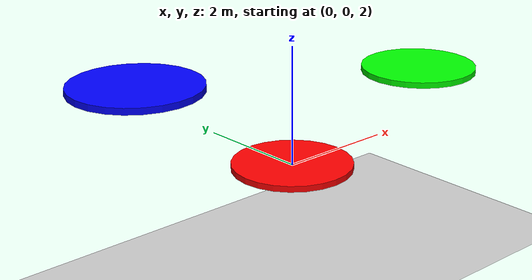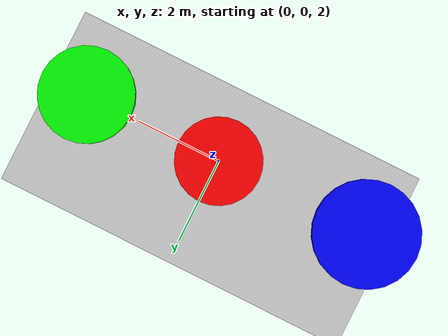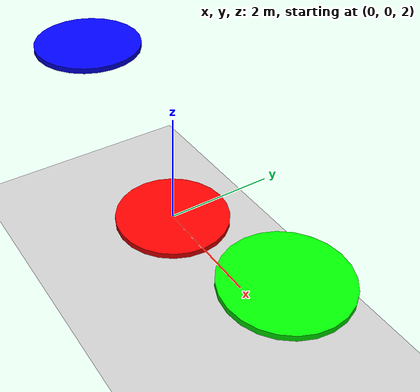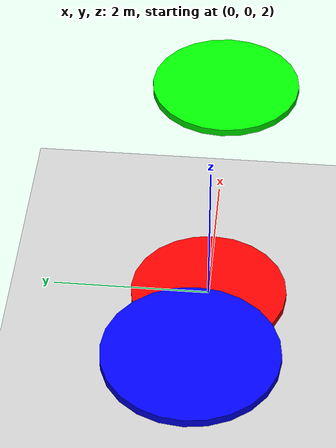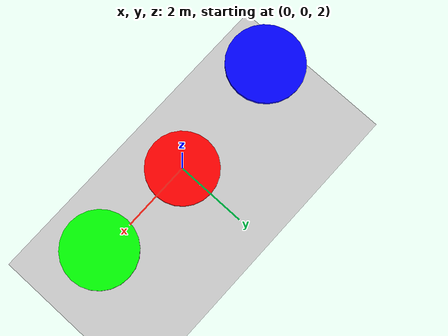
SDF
<sdf version="1.6">
  <world name="drone_circles_world">

    <!-- Physics (gravity yok) -->
    <physics name="default_physics" type="ode">
      <max_step_size>0.001</max_step_size>
      <real_time_factor>1.0</real_time_factor>
      <gravity>0 0 0</gravity>
    </physics>

    <!-- Light -->
    <light type="directional" name="sun">
      <pose>0 0 10 0 0 0</pose>
      <diffuse>1 1 1 1</diffuse>
      <specular>0.2 0.2 0.2 1</specular>
      <direction>-0.5 0.1 -0.9</direction>
    </light>

    <!-- Ground plane (görsel amaçlı) -->
    <model name="ground_plane">
      <static>true</static>
      <link name="link">
        <visual name="visual">
          <geometry>
            <plane>
              <normal>0 0 1</normal>
              <size>20 20</size>
            </plane>
          </geometry>
          <material>
            <ambient>0.8 0.8 0.8 1</ambient>
            <diffuse>0.8 0.8 0.8 1</diffuse>
          </material>
        </visual>
      </link>
    </model>

    <!-- Yuvarlak halkalar (torus yerine cylinder hollow kullanabiliriz) -->
    <model name="circle_1">
      <pose>0 0 2 0 0 0</pose>
      <link name="link">
        <collision name="collision">
          <geometry>
            <cylinder>
              <radius>1</radius>
              <length>0.1</length>
            </cylinder>
          </geometry>
        </collision>
        <visual name="visual">
          <geometry>
            <cylinder>
              <radius>1</radius>
              <length>0.1</length>
            </cylinder>
          </geometry>
          <material>
            <ambient>1 0 0 1</ambient>
            <diffuse>1 0 0 1</diffuse>
          </material>
        </visual>
      </link>
    </model>

    <model name="circle_2">
      <pose>3 0 3 0 0 0</pose>
      <link name="link">
        <collision name="collision">
          <geometry>
            <cylinder>
              <radius>1</radius>
              <length>0.1</length>
            </cylinder>
          </geometry>
        </collision>
        <visual name="visual">
          <geometry>
            <cylinder>
              <radius>1</radius>
              <length>0.1</length>
            </cylinder>
          </geometry>
          <material>
            <ambient>0 1 0 1</ambient>
            <diffuse>0 1 0 1</diffuse>
          </material>
        </visual>
      </link>
    </model>

    <model name="circle_3">
      <pose>-3 0 4 0 0 0</pose>
      <link name="link">
        <collision name="collision">
          <geometry>
            <cylinder>
              <radius>1</radius>
              <length>0.1</length>
            </cylinder>
          </geometry>
        </collision>
        <visual name="visual">
          <geometry>
            <cylinder>
              <radius>1</radius>
              <length>0.1</length>
            </cylinder>
          </geometry>
          <material>
            <ambient>0 0 1 1</ambient>
            <diffuse>0 0 1 1</diffuse>
          </material>
        </visual>
      </link>
    </model>

  </world>
</sdf>
